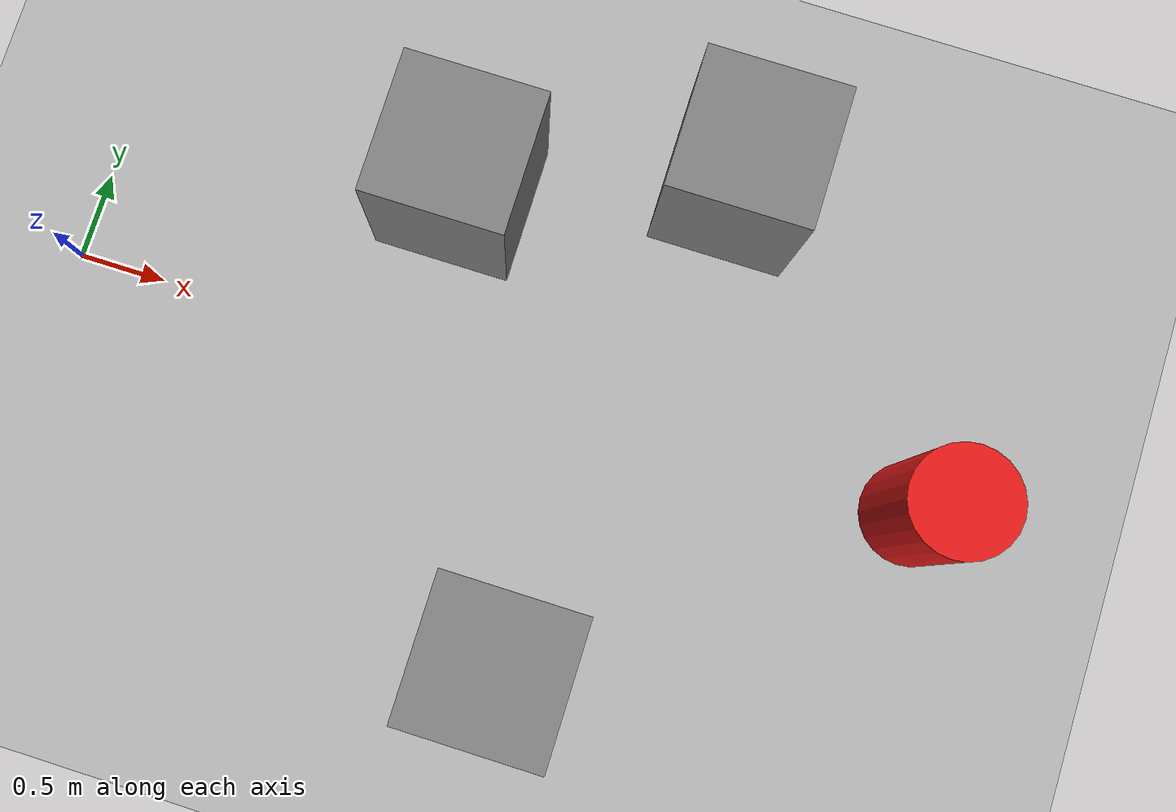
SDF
<?xml version="1.0" ?>
<sdf version="1.8">
  <world name="simple_world">

    <!-- 물리 엔진 설정 (중력 등) -->
    <physics name="1ms" type="ignored">
      <max_step_size>0.001</max_step_size>
      <real_time_factor>1.0</real_time_factor>
    </physics>

    <!-- 기본 시스템 플러그인 (물리, 명령, 씬) -->
    <plugin filename="ignition-gazebo-physics-system"
            name="ignition::gazebo::systems::Physics"></plugin>
    <plugin filename="ignition-gazebo-user-commands-system"
            name="ignition::gazebo::systems::UserCommands"></plugin>
    <plugin filename="ignition-gazebo-scene-broadcaster-system"
            name="ignition::gazebo::systems::SceneBroadcaster"></plugin>

    <!-- 조명 (햇빛) -->
    <light type="directional" name="sun">
      <cast_shadows>true</cast_shadows>
      <pose>0 0 10 0 0 0</pose>
      <diffuse>0.8 0.8 0.8 1</diffuse>
      <specular>0.2 0.2 0.2 1</specular>
      <direction>-0.5 0.1 -0.9</direction>
    </light>

    <!-- 바닥 (평평한 땅) -->
    <model name="ground_plane">
      <static>true</static>
      <link name="link">
        <collision name="collision">
          <geometry>
            <plane>
              <normal>0 0 1</normal>
              <size>20 20</size>
            </plane>
          </geometry>
        </collision>
        <visual name="visual">
          <geometry>
            <plane>
              <normal>0 0 1</normal>
              <size>20 20</size>
            </plane>
          </geometry>
          <material>
            <ambient>0.6 0.6 0.6 1</ambient>
            <diffuse>0.7 0.7 0.7 1</diffuse>
          </material>
        </visual>
      </link>
    </model>

    <!-- 목표 지점: 빨간 원기둥 (갯끈풀 대신) -->
    <model name="target_spartina">
      <static>true</static>
      <pose>5 0 0.5 0 0 0</pose>
      <link name="link">
        <visual name="visual">
          <geometry>
            <cylinder>
              <radius>0.3</radius>
              <length>1.0</length>
            </cylinder>
          </geometry>
          <material>
            <ambient>0.8 0.1 0.1 1</ambient>
            <diffuse>0.9 0.1 0.1 1</diffuse>
          </material>
        </visual>
      </link>
    </model>

    <!-- 장애물 1 -->
    <model name="obstacle_1">
      <static>true</static>
      <pose>2 1 0.5 0 0 0</pose>
      <link name="link">
        <collision name="collision">
          <geometry>
            <box><size>0.8 0.8 1.0</size></box>
          </geometry>
        </collision>
        <visual name="visual">
          <geometry>
            <box><size>0.8 0.8 1.0</size></box>
          </geometry>
          <material>
            <ambient>0.4 0.4 0.4 1</ambient>
            <diffuse>0.5 0.5 0.5 1</diffuse>
          </material>
        </visual>
      </link>
    </model>

    <!-- 장애물 2 -->
    <model name="obstacle_2">
      <static>true</static>
      <pose>3 -1.5 0.5 0 0 0</pose>
      <link name="link">
        <collision name="collision">
          <geometry>
            <box><size>0.8 0.8 1.0</size></box>
          </geometry>
        </collision>
        <visual name="visual">
          <geometry>
            <box><size>0.8 0.8 1.0</size></box>
          </geometry>
          <material>
            <ambient>0.4 0.4 0.4 1</ambient>
            <diffuse>0.5 0.5 0.5 1</diffuse>
          </material>
        </visual>
      </link>
    </model>

    <!-- 장애물 3 -->
    <model name="obstacle_3">
      <static>true</static>
      <pose>3.5 1.5 0.5 0 0 0</pose>
      <link name="link">
        <collision name="collision">
          <geometry>
            <box><size>0.8 0.8 1.0</size></box>
          </geometry>
        </collision>
        <visual name="visual">
          <geometry>
            <box><size>0.8 0.8 1.0</size></box>
          </geometry>
          <material>
            <ambient>0.4 0.4 0.4 1</ambient>
            <diffuse>0.5 0.5 0.5 1</diffuse>
          </material>
        </visual>
      </link>
    </model>

  </world>
</sdf>
